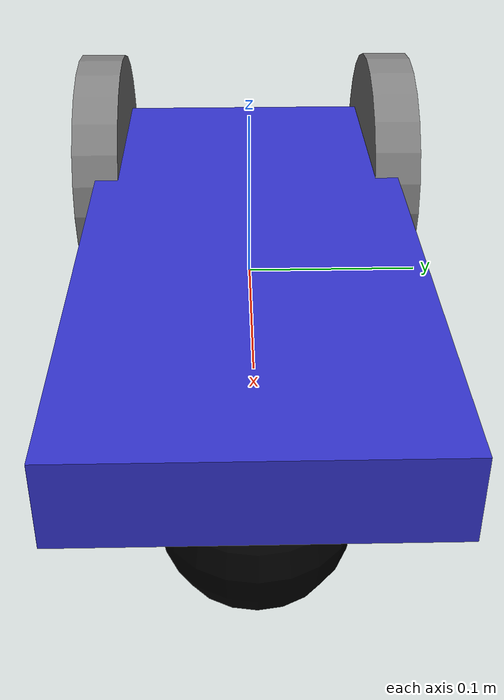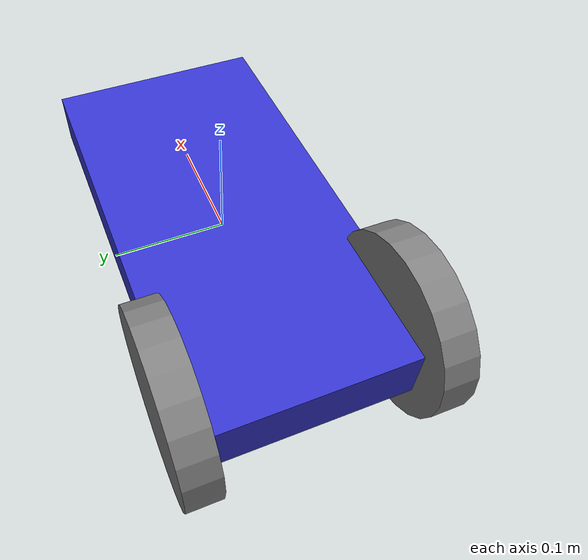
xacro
<?xml version="1.0"?>
<robot name="car" xmlns:xacro="http://wiki.ros.org/xacro">

  <!-- 定义常量 -->
  <xacro:property name="wheel_radius" value="0.08" />
  <xacro:property name="wheel_length" value="0.03" />
  <xacro:property name="wheel_separation" value="0.2" />
  <xacro:property name="wheel_diameter" value="0.16" />
  <xacro:property name="caster_radius" value="0.05" />

  <!-- 定义颜色 -->
  <xacro:property name="blue_color" value="0.2 0.2 0.8 1" />
  <xacro:property name="gray_color" value="0.5 0.5 0.5 1" />
  <xacro:property name="black_color" value="0 0 0 1" />

  <!-- 轮子宏定义 -->
  <xacro:macro name="wheel" params="name position">
    <link name="${name}_link">
      <visual>
        <geometry>
          <cylinder length="${wheel_length}" radius="${wheel_radius}" />
        </geometry>
        <material name="gray">
          <color rgba="${gray_color}" />
        </material>
      </visual>
      <collision>
        <geometry>
          <cylinder length="${wheel_length}" radius="${wheel_radius}" />
        </geometry>
      </collision>
      <inertial>
        <mass value="0.1" />
        <origin rpy="0 0 0" xyz="0 0 0" />
        <inertia ixx="0.0001" ixy="0" ixz="0" iyy="0.0001" iyz="0" izz="0.0001" />
      </inertial>
    </link>

    <joint name="${name}_joint" type="revolute">
      <parent link="base_link" />
      <child link="${name}_link" />
      <origin xyz="${position}" rpy="1.5708 0 0" />
      <axis xyz="0 0 1" />
      <limit effort="100" lower="-1000" upper="1000" velocity="10" />
    </joint>
  </xacro:macro>

  <!-- 万向轮宏定义 -->
  <xacro:macro name="caster" params="name position">
    <link name="${name}_link">
      <visual>
        <geometry>
          <sphere radius="${caster_radius}" />
        </geometry>
        <material name="black">
          <color rgba="${black_color}" />
        </material>
      </visual>
      <collision>
        <geometry>
          <sphere radius="${caster_radius}" />
        </geometry>
      </collision>
      <inertial>
        <mass value="0.05" />
        <origin rpy="0 0 0" xyz="0 0 0" />
        <inertia ixx="0.00001" ixy="0" ixz="0" iyy="0.00001" iyz="0" izz="0.00001" />
      </inertial>
    </link>

    <joint name="${name}_joint" type="fixed">
      <parent link="base_link" />
      <child link="${name}_link" />
      <origin xyz="${position}" />
    </joint>
  </xacro:macro>

  <!-- 底盘 -->
  <link name="base_link">
    <visual>
      <geometry>
        <box size="0.4 0.2 0.05" />
      </geometry>
      <material name="blue">
        <color rgba="${blue_color}" />
      </material>
    </visual>
    <collision>
      <geometry>
        <box size="0.4 0.2 0.05" />
      </geometry>
    </collision>
    <inertial>
      <mass value="1" />
      <origin rpy="0 0 0" xyz="0 0 0" />
      <inertia ixx="0.001" ixy="0" ixz="0" iyy="0.001" iyz="0" izz="0.001" />
    </inertial>
  </link>

  <!-- 使用宏创建轮子 -->
  <xacro:wheel name="wheel_left" position="-0.15 0.1 0" />
  <xacro:wheel name="wheel_right" position="-0.15 -0.1 0" />

  <!-- 使用宏创建万向轮 -->
  <xacro:caster name="caster" position="0.15 0 -0.05" />

  <!-- Gazebo插件 -->
  <gazebo>
    <plugin name="differential_drive_controller" filename="libgazebo_ros_diff_drive.so">
        <alwaysOn>true</alwaysOn>
        <leftJoint>wheel_left_joint</leftJoint>
        <rightJoint>wheel_right_joint</rightJoint>
        <wheelSeparation>0.24</wheelSeparation>
        <wheelDiameter>0.2</wheelDiameter>
        <torque>10</torque>
        <commandTopic>cmd_vel</commandTopic>
        <odometryTopic>odom</odometryTopic>
        <odometryFrame>odom</odometryFrame>
        <robotBaseFrame>base_link</robotBaseFrame>
    </plugin>
  </gazebo>

</robot>
